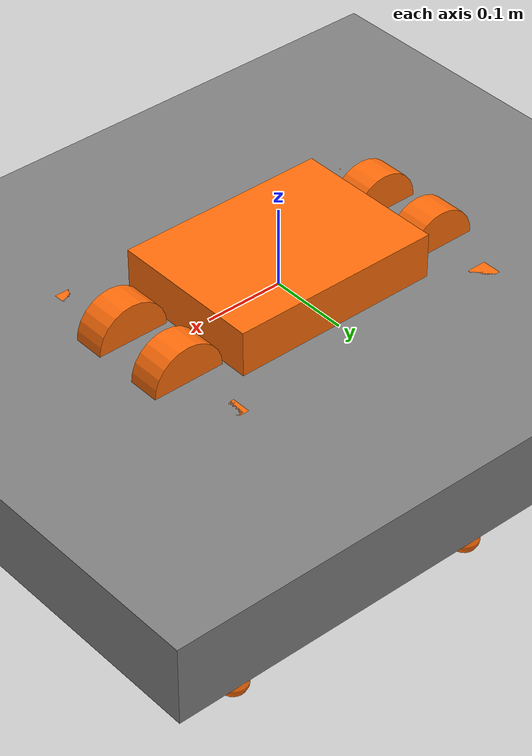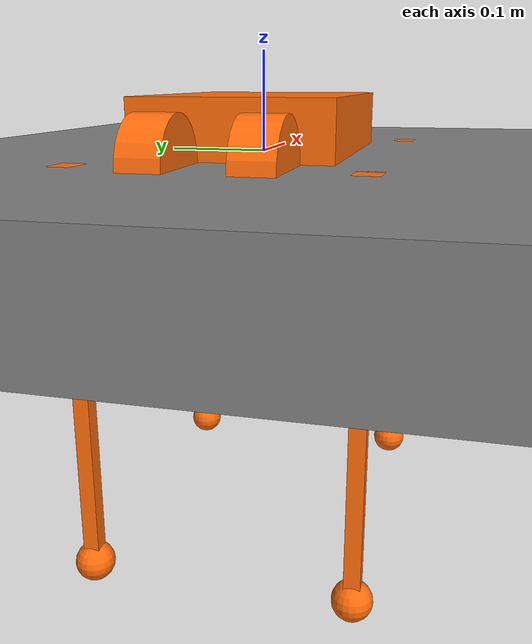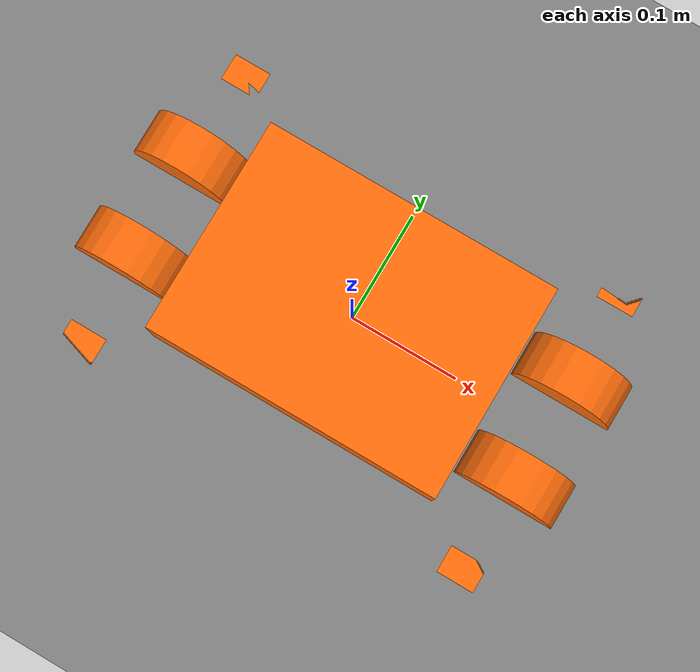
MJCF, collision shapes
<mujoco model="a1_description">
    <compiler angle="radian" meshdir="../meshes/" />
    <size njmax="500" nconmax="100" />
    <asset>
        <mesh name="trunk" file="trunk.stl" />
        <mesh name="hip" file="hip.stl" />
        <mesh name="thigh_mirror" file="thigh_mirror.stl" />
        <mesh name="calf" file="calf.stl" />
        <mesh name="thigh" file="thigh.stl" />
    </asset>
    <worldbody>
        <geom size="50 50 0.05" pos="0 0 -0.05" type="box" />
        <geom size="0.0005 0.0005 0.0005" type="box" contype="0" conaffinity="0" group="1" />
        <geom type="mesh" contype="0" conaffinity="0" group="1" rgba="1 0.423529 0.0392157 1" mesh="trunk" />
        <geom size="0.1335 0.097 0.057" type="box" rgba="1 0.423529 0.0392157 1" />
        <geom size="0.0005 0.0005 0.0005" type="box" contype="0" conaffinity="0" group="1" rgba="0.8 0 0 1" />
        <geom size="0.0005 0.0005 0.0005" type="box" rgba="0.8 0 0 1" />
        <body name="FR_hip" pos="0.183 -0.047 0">
            <inertial pos="-0.003311 -0.000635 3.1e-05" quat="0.507528 0.506268 0.491507 0.494499" mass="0.696" diaginertia="0.000807752 0.00055293 0.000468983" />
            <joint name="FR_hip_joint" pos="0 0 0" axis="1 0 0" limited="true" range="-0.802851 0.802851" />
            <geom quat="0 1 0 0" type="mesh" contype="0" conaffinity="0" group="1" rgba="1 0.423529 0.0392157 1" mesh="hip" />
            <geom size="0.046 0.02" quat="0.707107 0.707107 0 0" type="cylinder" rgba="1 0.423529 0.0392157 1" />
            <body name="FR_thigh" pos="0 -0.08505 0">
                <inertial pos="-0.003237 0.022327 -0.027326" quat="0.999125 -0.00256393 -0.0409531 -0.00806091" mass="1.013" diaginertia="0.00555739 0.00513936 0.00133944" />
                <joint name="FR_thigh_joint" pos="0 0 0" axis="0 1 0" limited="true" range="-1.0472 4.18879" />
                <geom type="mesh" contype="0" conaffinity="0" group="1" rgba="1 0.423529 0.0392157 1" mesh="thigh_mirror" />
                <geom size="0.1 0.01225 0.017" pos="0 0 -0.1" quat="0.707107 0 0.707107 0" type="box" rgba="1 0.423529 0.0392157 1" />
                <body name="FR_calf" pos="0 0 -0.2">
                    <inertial pos="0.00472659 0 -0.131975" quat="0.706886 0.017653 0.017653 0.706886" mass="0.226" diaginertia="0.00340344 0.00339393 3.54834e-05" />
                    <joint name="FR_calf_joint" pos="0 0 0" axis="0 1 0" limited="true" range="-2.69653 -0.916298" />
                    <geom type="mesh" contype="0" conaffinity="0" group="1" rgba="1 0.423529 0.0392157 1" mesh="calf" />
                    <geom size="0.1 0.008 0.008" pos="0 0 -0.1" quat="0.707107 0 0.707107 0" type="box" rgba="1 0.423529 0.0392157 1" />
                    <geom size="0.01" pos="0 0 -0.2" contype="0" conaffinity="0" group="1" rgba="1 0.423529 0.0392157 1" />
                    <geom size="0.02" pos="0 0 -0.2" rgba="1 0.423529 0.0392157 1" />
                </body>
            </body>
        </body>
        <body name="FL_hip" pos="0.183 0.047 0">
            <inertial pos="-0.003311 0.000635 3.1e-05" quat="0.494499 0.491507 0.506268 0.507528" mass="0.696" diaginertia="0.000807752 0.00055293 0.000468983" />
            <joint name="FL_hip_joint" pos="0 0 0" axis="1 0 0" limited="true" range="-0.802851 0.802851" />
            <geom type="mesh" contype="0" conaffinity="0" group="1" rgba="1 0.423529 0.0392157 1" mesh="hip" />
            <geom size="0.046 0.02" quat="0.707107 0.707107 0 0" type="cylinder" rgba="1 0.423529 0.0392157 1" />
            <body name="FL_thigh" pos="0 0.08505 0">
                <inertial pos="-0.003237 -0.022327 -0.027326" quat="0.999125 0.00256393 -0.0409531 0.00806091" mass="1.013" diaginertia="0.00555739 0.00513936 0.00133944" />
                <joint name="FL_thigh_joint" pos="0 0 0" axis="0 1 0" limited="true" range="-1.0472 4.18879" />
                <geom type="mesh" contype="0" conaffinity="0" group="1" rgba="1 0.423529 0.0392157 1" mesh="thigh" />
                <geom size="0.1 0.01225 0.017" pos="0 0 -0.1" quat="0.707107 0 0.707107 0" type="box" rgba="1 0.423529 0.0392157 1" />
                <body name="FL_calf" pos="0 0 -0.2">
                    <inertial pos="0.00472659 0 -0.131975" quat="0.706886 0.017653 0.017653 0.706886" mass="0.226" diaginertia="0.00340344 0.00339393 3.54834e-05" />
                    <joint name="FL_calf_joint" pos="0 0 0" axis="0 1 0" limited="true" range="-2.69653 -0.916298" />
                    <geom type="mesh" contype="0" conaffinity="0" group="1" rgba="1 0.423529 0.0392157 1" mesh="calf" />
                    <geom size="0.1 0.008 0.008" pos="0 0 -0.1" quat="0.707107 0 0.707107 0" type="box" rgba="1 0.423529 0.0392157 1" />
                    <geom size="0.01" pos="0 0 -0.2" contype="0" conaffinity="0" group="1" rgba="1 0.423529 0.0392157 1" />
                    <geom size="0.02" pos="0 0 -0.2" rgba="1 0.423529 0.0392157 1" />
                </body>
            </body>
        </body>
        <body name="RR_hip" pos="-0.183 -0.047 0">
            <inertial pos="0.003311 -0.000635 3.1e-05" quat="0.491507 0.494499 0.507528 0.506268" mass="0.696" diaginertia="0.000807752 0.00055293 0.000468983" />
            <joint name="RR_hip_joint" pos="0 0 0" axis="1 0 0" limited="true" range="-0.802851 0.802851" />
            <geom quat="0 0 0 -1" type="mesh" contype="0" conaffinity="0" group="1" rgba="1 0.423529 0.0392157 1" mesh="hip" />
            <geom size="0.046 0.02" quat="0.707107 0.707107 0 0" type="cylinder" rgba="1 0.423529 0.0392157 1" />
            <body name="RR_thigh" pos="0 -0.08505 0">
                <inertial pos="-0.003237 0.022327 -0.027326" quat="0.999125 -0.00256393 -0.0409531 -0.00806091" mass="1.013" diaginertia="0.00555739 0.00513936 0.00133944" />
                <joint name="RR_thigh_joint" pos="0 0 0" axis="0 1 0" limited="true" range="-1.0472 4.18879" />
                <geom type="mesh" contype="0" conaffinity="0" group="1" rgba="1 0.423529 0.0392157 1" mesh="thigh_mirror" />
                <geom size="0.1 0.01225 0.017" pos="0 0 -0.1" quat="0.707107 0 0.707107 0" type="box" rgba="1 0.423529 0.0392157 1" />
                <body name="RR_calf" pos="0 0 -0.2">
                    <inertial pos="0.00472659 0 -0.131975" quat="0.706886 0.017653 0.017653 0.706886" mass="0.226" diaginertia="0.00340344 0.00339393 3.54834e-05" />
                    <joint name="RR_calf_joint" pos="0 0 0" axis="0 1 0" limited="true" range="-2.69653 -0.916298" />
                    <geom type="mesh" contype="0" conaffinity="0" group="1" rgba="1 0.423529 0.0392157 1" mesh="calf" />
                    <geom size="0.1 0.008 0.008" pos="0 0 -0.1" quat="0.707107 0 0.707107 0" type="box" rgba="1 0.423529 0.0392157 1" />
                    <geom size="0.01" pos="0 0 -0.2" contype="0" conaffinity="0" group="1" rgba="1 0.423529 0.0392157 1" />
                    <geom size="0.02" pos="0 0 -0.2" rgba="1 0.423529 0.0392157 1" />
                </body>
            </body>
        </body>
        <body name="RL_hip" pos="-0.183 0.047 0">
            <inertial pos="0.003311 0.000635 3.1e-05" quat="0.506268 0.507528 0.494499 0.491507" mass="0.696" diaginertia="0.000807752 0.00055293 0.000468983" />
            <joint name="RL_hip_joint" pos="0 0 0" axis="1 0 0" limited="true" range="-0.802851 0.802851" />
            <geom quat="0 0 1 0" type="mesh" contype="0" conaffinity="0" group="1" rgba="1 0.423529 0.0392157 1" mesh="hip" />
            <geom size="0.046 0.02" quat="0.707107 0.707107 0 0" type="cylinder" rgba="1 0.423529 0.0392157 1" />
            <body name="RL_thigh" pos="0 0.08505 0">
                <inertial pos="-0.003237 -0.022327 -0.027326" quat="0.999125 0.00256393 -0.0409531 0.00806091" mass="1.013" diaginertia="0.00555739 0.00513936 0.00133944" />
                <joint name="RL_thigh_joint" pos="0 0 0" axis="0 1 0" limited="true" range="-1.0472 4.18879" />
                <geom type="mesh" contype="0" conaffinity="0" group="1" rgba="1 0.423529 0.0392157 1" mesh="thigh" />
                <geom size="0.1 0.01225 0.017" pos="0 0 -0.1" quat="0.707107 0 0.707107 0" type="box" rgba="1 0.423529 0.0392157 1" />
                <body name="RL_calf" pos="0 0 -0.2">
                    <inertial pos="0.00472659 0 -0.131975" quat="0.706886 0.017653 0.017653 0.706886" mass="0.226" diaginertia="0.00340344 0.00339393 3.54834e-05" />
                    <joint name="RL_calf_joint" pos="0 0 0" axis="0 1 0" limited="true" range="-2.69653 -0.916298" />
                    <geom type="mesh" contype="0" conaffinity="0" group="1" rgba="1 0.423529 0.0392157 1" mesh="calf" />
                    <geom size="0.1 0.008 0.008" pos="0 0 -0.1" quat="0.707107 0 0.707107 0" type="box" rgba="1 0.423529 0.0392157 1" />
                    <geom size="0.01" pos="0 0 -0.2" contype="0" conaffinity="0" group="1" rgba="1 0.423529 0.0392157 1" />
                    <geom size="0.02" pos="0 0 -0.2" rgba="1 0.423529 0.0392157 1" />
                </body>
            </body>
        </body>
    </worldbody>
</mujoco>
